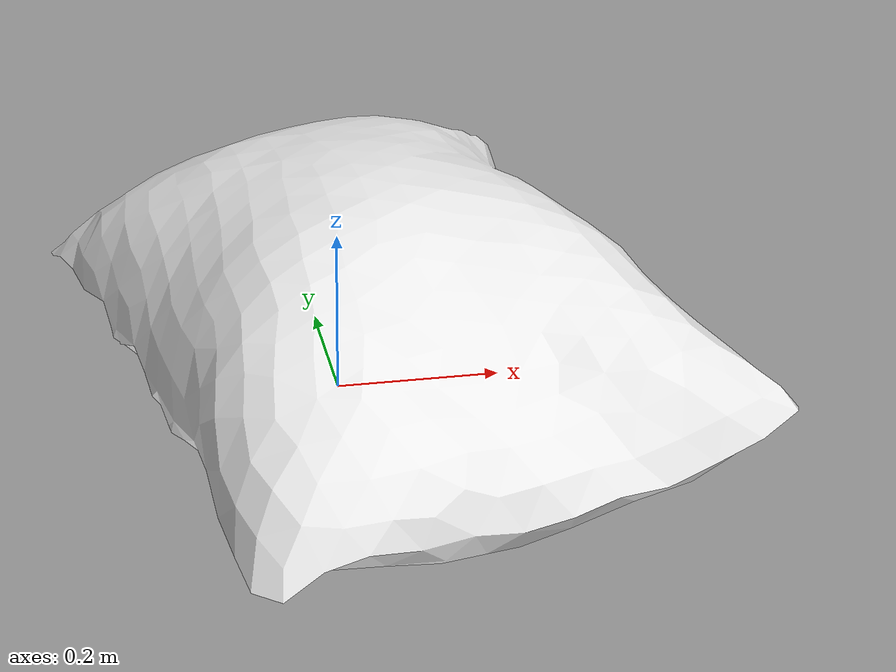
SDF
<?xml version="1.0" ?><sdf version="1.5"><model name="pellets-sack2">
<link name="link">
<pose>0 0 0 0 0 0</pose>
<inertial>
<pose>0.0493325 -0.0808365 0.170128 0 0 0</pose>
<mass>16</mass>
<inertia>
<ixx>1.41691</ixx>
<ixy>0</ixy><iyy>0.892643</iyy>
<ixz>0</ixz><iyz>0</iyz><izz>2.08526</izz>
</inertia>
</inertial>
<visual name="visual">
<pose>0 0 0 0 0 0</pose>
<geometry><mesh><uri>model://pellets-sack2/meshes/pellets-sack2.dae</uri></mesh></geometry>
<material><script><uri>file://media/materials/scripts/gazebo.material</uri><name>Gazebo/WhiteGlow</name></script></material></visual>
<collision name="collision"><pose>0 0 0 0 0 0</pose><geometry><mesh><uri>model://pellets-sack2/meshes/pellets-sack2.dae</uri></mesh></geometry>
<surface><friction><ode><mu>1.000000</mu><mu2>1.000000</mu2></ode></friction></surface>
</collision></link></model></sdf>
